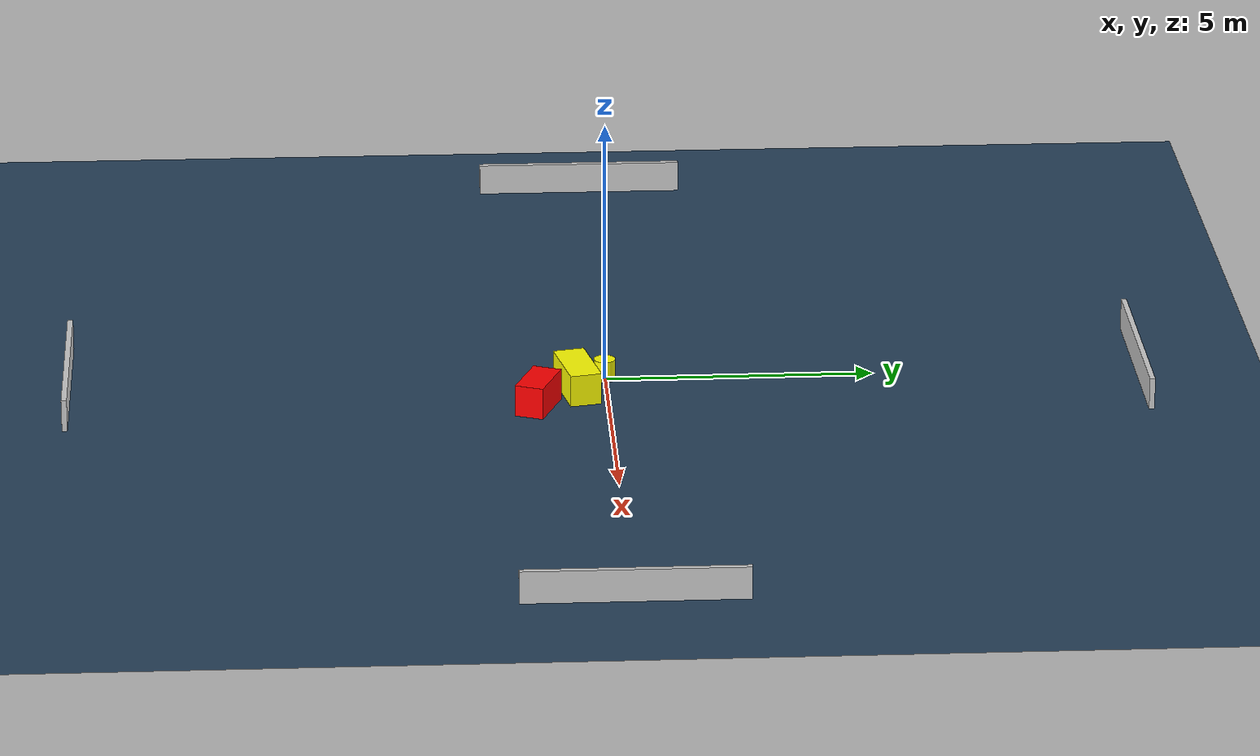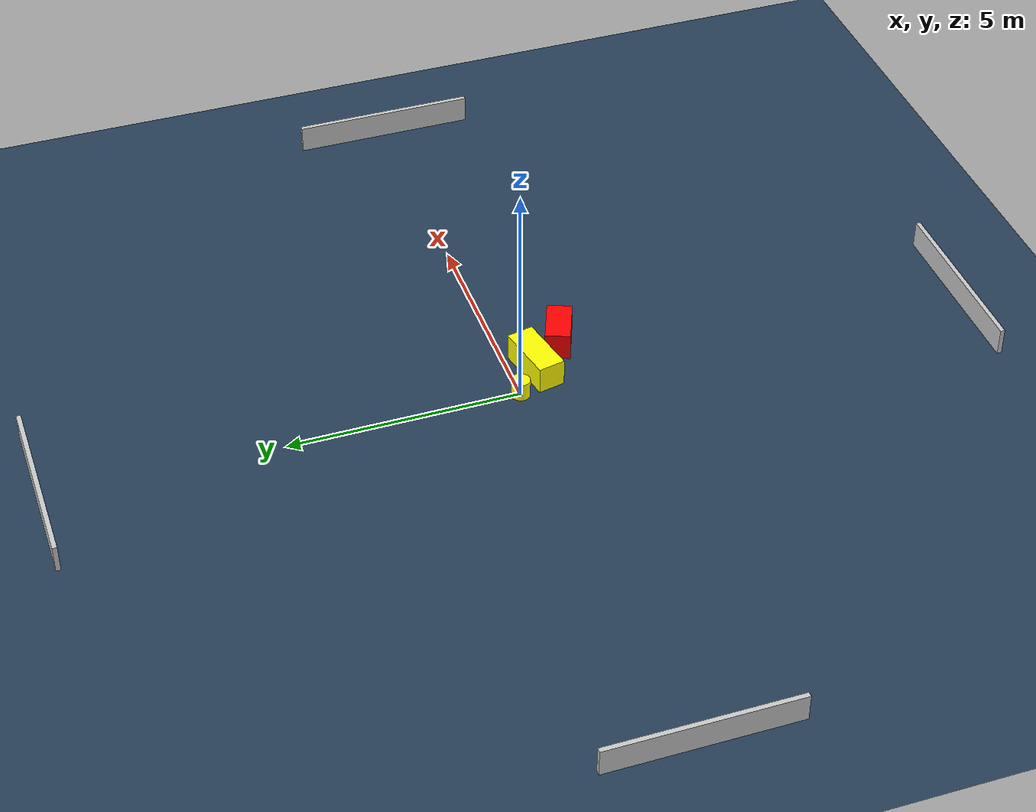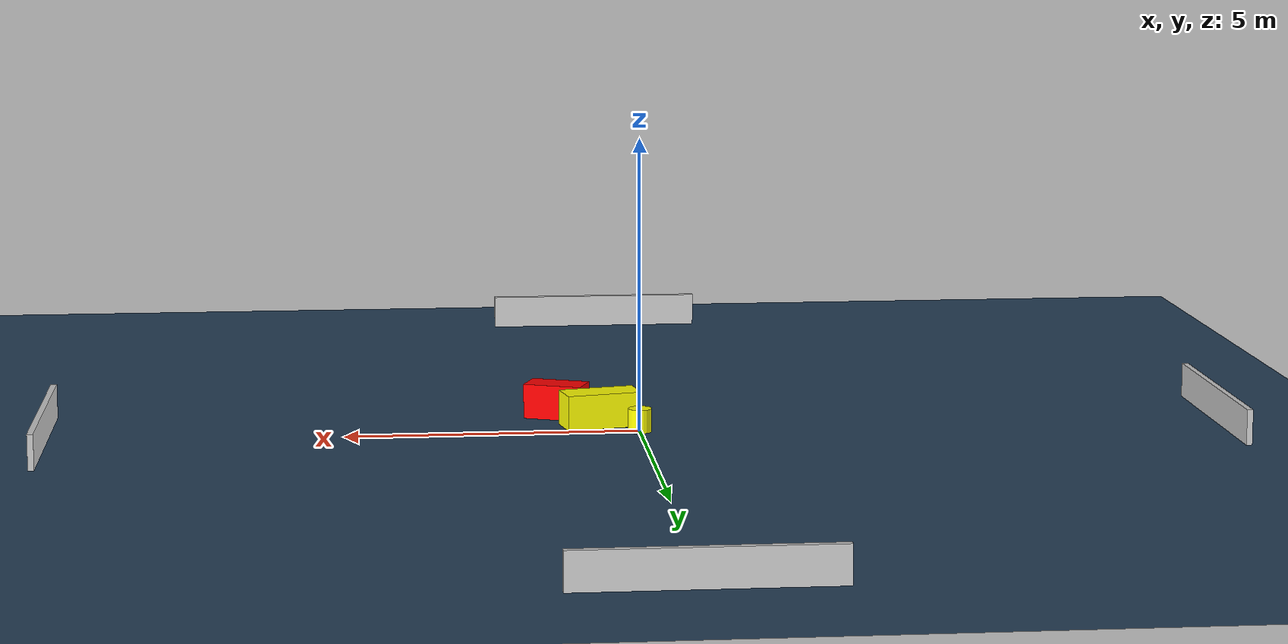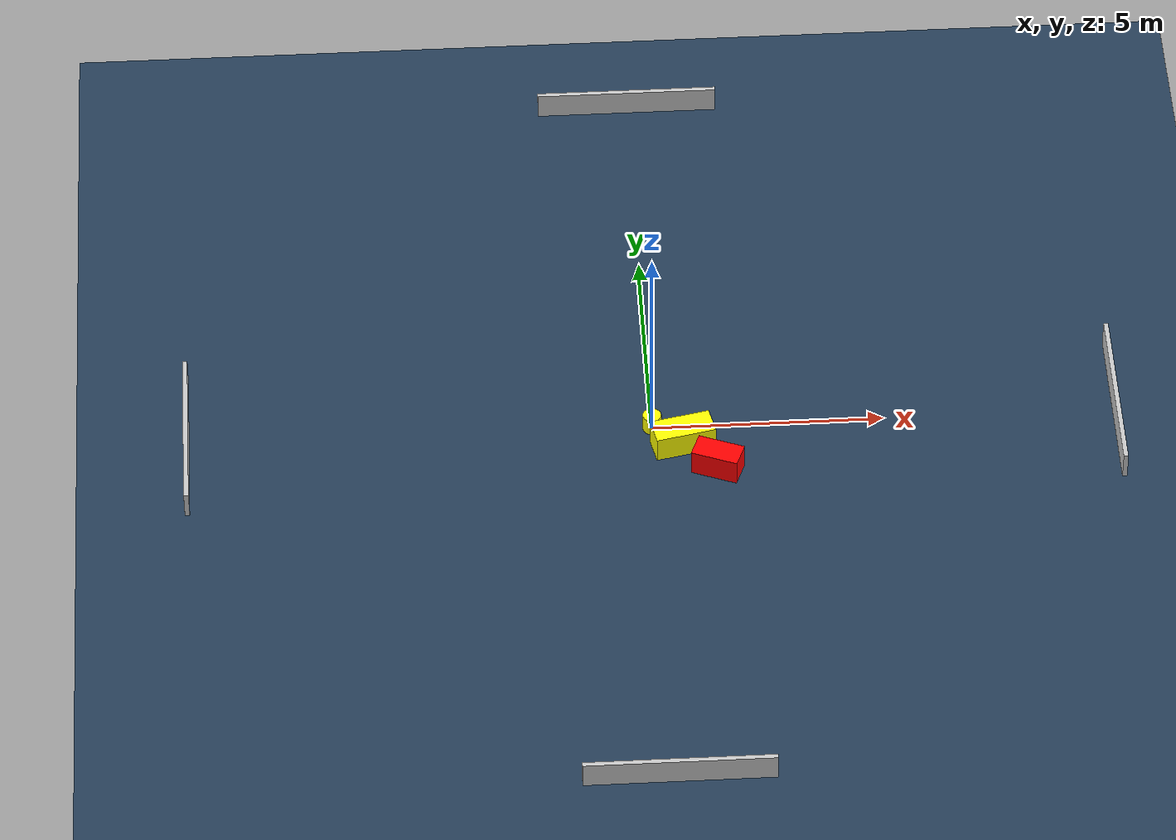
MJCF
<?xml version="1.0" ?>
<mujoco model="generated_environment">
  <option timestep="0.01" integrator="RK4" cone="elliptic"/>
  <default>
    <geom density="1"/>
  </default>
  <asset>
    <texture builtin="gradient" height="3072" name="skybox" rgb1="0.3 0.5 0.7" rgb2="0 0 0" type="skybox" width="512"/>
    <texture builtin="checker" height="300" name="groundplane" rgb1="0.2 0.3 0.4" rgb2="0.1 0.2 0.3" type="2d" width="300"/>
    <material name="groundplane" reflectance="0.2" texrepeat="5 5" texture="groundplane"/>
  </asset>
  <worldbody>
    <light dir="0 0 -1" directional="true" pos="0 0 1.5"/>
    <geom condim="3" friction="0.5 0.005 0.001" material="groundplane" name="floor" pos="0 0 0" size="0 0 0.05" type="plane"/>
    <body name="walls">
      <geom name="wall_1" condim="4" pos="-10.0 0.0 0.3" rgba="0.800000011920929 0.800000011920929 0.800000011920929 1.0" size="0.05 2.0 0.3" type="box"/>
      <geom name="wall_2" condim="4" pos="10.0 0.0 0.3" rgba="0.800000011920929 0.800000011920929 0.800000011920929 1.0" size="0.05 2.0 0.3" type="box"/>
      <geom name="wall_3" condim="4" pos="0.0 -10.0 0.3" rgba="0.800000011920929 0.800000011920929 0.800000011920929 1.0" size="2.0 0.05 0.3" type="box"/>
      <geom name="wall_4" condim="4" pos="0.0 10.0 0.3" rgba="0.800000011920929 0.800000011920929 0.800000011920929 1.0" size="2.0 0.05 0.3" type="box"/>
    </body>
    <body name="robot">
      <joint name="joint_x" type="slide" pos="0 0 0" axis="1 0 0"/>
      <joint name="joint_y" type="slide" pos="0 0 0" axis="0 1 0"/>
      <geom name="robot" type="cylinder" pos="0.0 0.0 0.2" size="0.2 0.2 0.0" mass="5.0" friction="1.0 0.005 0.0001" condim="4" rgba="1.0 1.0 0.0 1.0"/>
    </body>
    <body name="obstacle_1_movable">
      <geom name="obstacle_1_movable" condim="4" pos="0.6308918134391829 -0.5454490010803097 0.3" euler="0 0 11.847995979753385" friction="0.0 0.005 0.001" rgba="1.0 1.0 0.0 1.0" size="0.6530865390459282 0.2951240223099143 0.3" type="box" mass="0.1"/>
      <joint type="free"/>
    </body>
    <body name="obstacle_2_static">
      <geom name="obstacle_2_static" condim="4" pos="1.3339891027633393 -1.299232170759915 0.3" euler="0 0 68.3037293716423" friction="0.0 0.005 0.001" rgba="1.0 0.0 0.0 1.0" size="0.27035858698480847 0.5118831967638646 0.3" type="box"/>
    </body>
  </worldbody>
  <actuator>
    <motor name="actuator_x" joint="joint_x" gear="1" ctrlrange="-1 1"/>
    <motor name="actuator_y" joint="joint_y" gear="1" ctrlrange="-1 1"/>
  </actuator>
</mujoco>
